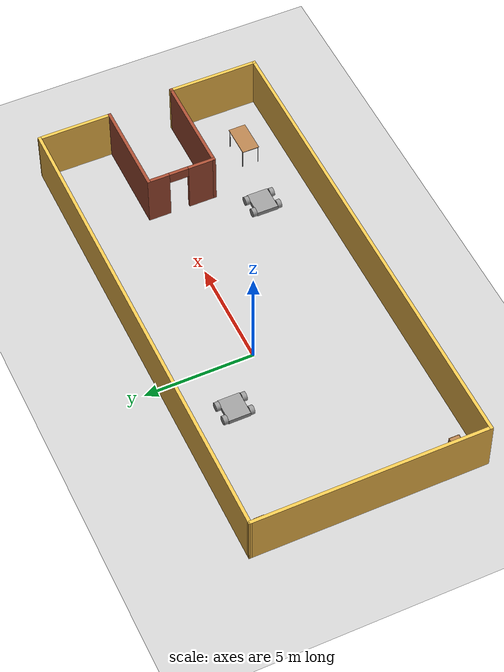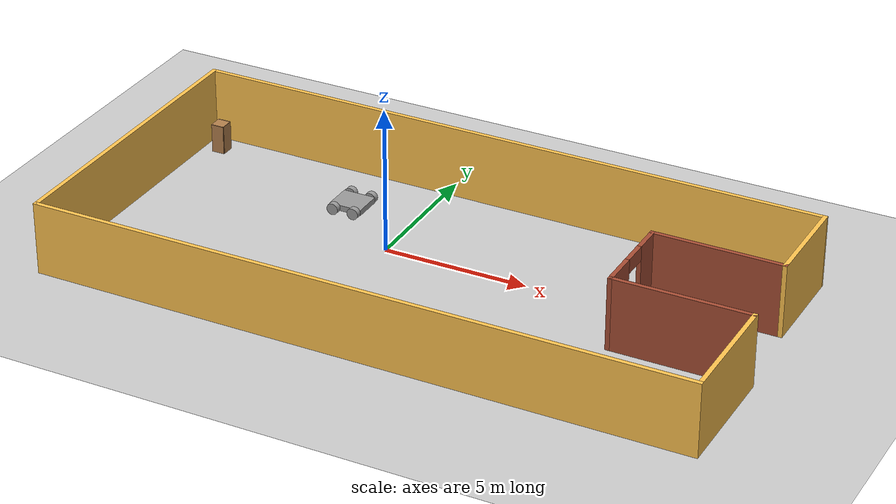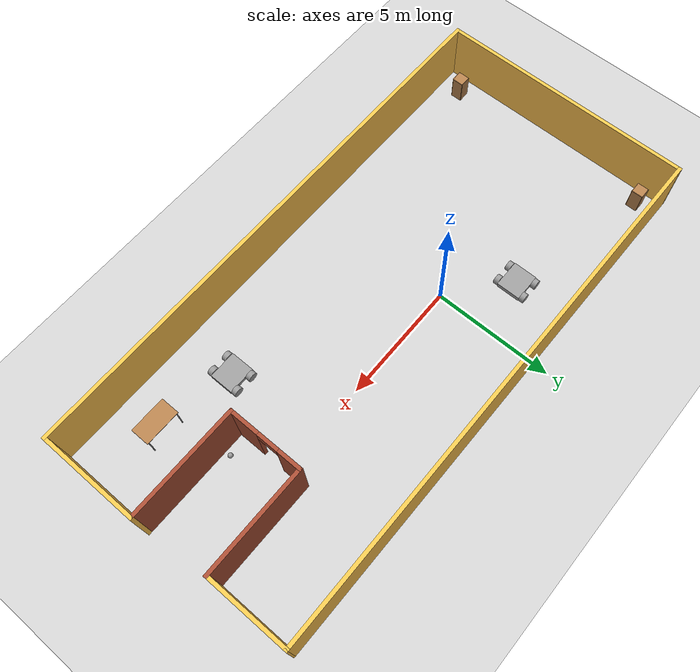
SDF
<sdf version="1.6">
 <world name="default">
  <plugin name="hello" filename="libhello.so"/>
  <light name="sun" type="directional">
   <pose>0 0 10 0 -0 0</pose>
   <diffuse>0.8 0.8 0.8 1</diffuse>
   <specular>0.2 0.2 0.2 1</specular>
   <attenuation>
    <range>1000</range>
    <constant>0.9</constant>
    <linear>0.01</linear>
    <quadratic>0.001</quadratic>
   </attenuation>
   <direction>-0.5 0.1 -0.9</direction>
  </light>
  <model name="ground_plane">
   <static>1</static>
   <link name="link">
    <collision name="collision">
     <geometry><plane><normal>0 0 1</normal><size>100 100</size></plane></geometry>
     <surface>
      <contact><collide_bitmask>65535</collide_bitmask></contact>
      <friction><ode><mu>100</mu><mu2>50</mu2></ode></friction>
     </surface>
    </collision>
    <visual name="visual">
     <cast_shadows>0</cast_shadows>
     <geometry><plane><normal>0 0 1</normal><size>100 100</size></plane></geometry>
     <material>
      <script><uri>file://media/materials/scripts/gazebo.material</uri><name>Gazebo/Grey</name></script>
     </material>
    </visual>
   </link>
  </model>
  <gravity>0 0 -9.8</gravity>
  <magnetic_field>6e-06 2.3e-05 -4.2e-05</magnetic_field>
  <atmosphere type="adiabatic"/>
  <physics name="default_physics" default="0" type="ode">
   <max_step_size>0.001</max_step_size>
   <real_time_factor>1</real_time_factor>
   <real_time_update_rate>1000</real_time_update_rate>
  </physics>
  <scene><ambient>0.4 0.4 0.4 1</ambient><background>0.7 0.7 0.7 1</background><shadows>1</shadows></scene>
  <spherical_coordinates>
   <surface_model>EARTH_WGS84</surface_model>
   <latitude_deg>0</latitude_deg>
   <longitude_deg>0</longitude_deg>
   <elevation>0</elevation>
   <heading_deg>0</heading_deg>
  </spherical_coordinates>
  <model name="mybuilding">
   <pose>2.21796 -0.97402 0 0 -0 0</pose>
   <link name="Wall_10">
    <collision name="Wall_10_Collision">
     <geometry><box><size>22.5 0.15 2.5</size></box></geometry>
     <pose>0 0 1.25 0 -0 0</pose>
    </collision>
    <visual name="Wall_10_Visual">
     <pose>0 0 1.25 0 -0 0</pose>
     <geometry><box><size>22.5 0.15 2.5</size></box></geometry>
     <material>
      <script><uri>file://media/materials/scripts/gazebo.material</uri><name>Gazebo/Grey</name></script>
      <ambient>1 0.764706 0.305882 1</ambient>
     </material>
     <meta><layer>0</layer></meta>
    </visual>
    <pose>8.7e-05 -5.30009 0 0 -0 0</pose>
   </link>
   <link name="Wall_11">
    <collision name="Wall_11_Collision">
     <geometry><box><size>4.25 0.15 2.5</size></box></geometry>
     <pose>0 0 1.25 0 -0 0</pose>
    </collision>
    <visual name="Wall_11_Visual">
     <pose>0 0 1.25 0 -0 0</pose>
     <geometry><box><size>4.25 0.15 2.5</size></box></geometry>
     <material>
      <script><uri>file://media/materials/scripts/gazebo.material</uri><name>Gazebo/Grey</name></script>
      <ambient>1 0.764706 0.305882 1</ambient>
     </material>
     <meta><layer>0</layer></meta>
    </visual>
    <pose>11.1751 -3.25008 0 0 -0 1.5708</pose>
   </link>
   <link name="Wall_12">
    <collision name="Wall_12_Collision">
     <geometry><box><size>4.75 0.15 2.5</size></box></geometry>
     <pose>0 0 1.25 0 -0 0</pose>
    </collision>
    <visual name="Wall_12_Visual">
     <pose>0 0 1.25 0 -0 0</pose>
     <geometry><box><size>4.75 0.15 2.5</size></box></geometry>
     <material>
      <script><uri>file://media/materials/scripts/gazebo.material</uri><name>Gazebo/Bricks</name></script>
      <ambient>1 0.764706 0.305882 1</ambient>
     </material>
     <meta><layer>0</layer></meta>
    </visual>
    <pose>8.87509 -1.20008 0 0 -0 3.14159</pose>
   </link>
   <link name="Wall_13">
    <pose>6.57509 0.349915 0 0 -0 1.5708</pose>
    <visual name="Wall_13_Visual_0">
     <pose>-0.975023 0 1.25 0 -0 0</pose>
     <geometry><box><size>1.29995 0.15 2.5</size></box></geometry>
     <material>
      <script><uri>file://media/materials/scripts/gazebo.material</uri><name>Gazebo/Bricks</name></script>
      <ambient>1 0.764706 0.305882 1</ambient>
     </material>
     <meta><layer>0</layer></meta>
    </visual>
    <collision name="Wall_13_Collision_0">
     <geometry><box><size>1.29995 0.15 2.5</size></box></geometry>
     <pose>-0.975023 0 1.25 0 -0 0</pose>
    </collision>
    <visual name="Wall_13_Visual_1">
     <pose>1.09998 0 1.25 0 -0 0</pose>
     <geometry><box><size>1.05004 0.15 2.5</size></box></geometry>
     <material>
      <script><uri>file://media/materials/scripts/gazebo.material</uri><name>Gazebo/Bricks</name></script>
      <ambient>1 0.764706 0.305882 1</ambient>
     </material>
     <meta><layer>0</layer></meta>
    </visual>
    <collision name="Wall_13_Collision_1">
     <geometry><box><size>1.05004 0.15 2.5</size></box></geometry>
     <pose>1.09998 0 1.25 0 -0 0</pose>
    </collision>
    <visual name="Wall_13_Visual_2">
     <pose>0.124955 0 2.25 0 -0 0</pose>
     <geometry><box><size>0.9 0.15 0.5</size></box></geometry>
     <material>
      <script><uri>file://media/materials/scripts/gazebo.material</uri><name>Gazebo/Bricks</name></script>
      <ambient>1 0.764706 0.305882 1</ambient>
     </material>
     <meta><layer>0</layer></meta>
    </visual>
    <collision name="Wall_13_Collision_2">
     <geometry><box><size>0.9 0.15 0.5</size></box></geometry>
     <pose>0.124955 0 2.25 0 -0 0</pose>
    </collision>
   </link>
   <link name="Wall_14">
    <collision name="Wall_14_Collision">
     <geometry><box><size>4.5 0.15 2.5</size></box></geometry>
     <pose>0 0 1.25 0 -0 0</pose>
    </collision>
    <visual name="Wall_14_Visual">
     <pose>0 0 1.25 0 -0 0</pose>
     <geometry><box><size>4.5 0.15 2.5</size></box></geometry>
     <material>
      <script><uri>file://media/materials/scripts/gazebo.material</uri><name>Gazebo/Bricks</name></script>
      <ambient>1 0.764706 0.305882 1</ambient>
     </material>
     <meta><layer>0</layer></meta>
    </visual>
    <pose>8.75009 1.89992 0 0 -0 0</pose>
   </link>
   <link name="Wall_15">
    <collision name="Wall_15_Collision">
     <geometry><box><size>3.5 0.15 2.5</size></box></geometry>
     <pose>0 0 1.25 0 -0 0</pose>
    </collision>
    <visual name="Wall_15_Visual">
     <pose>0 0 1.25 0 -0 0</pose>
     <geometry><box><size>3.5 0.15 2.5</size></box></geometry>
     <material>
      <script><uri>file://media/materials/scripts/gazebo.material</uri><name>Gazebo/Grey</name></script>
      <ambient>1 0.764706 0.305882 1</ambient>
     </material>
     <meta><layer>0</layer></meta>
    </visual>
    <pose>10.9251 3.57491 0 0 -0 1.5708</pose>
   </link>
   <link name="Wall_16">
    <collision name="Wall_16_Collision">
     <geometry><box><size>22.2501 0.15 2.5</size></box></geometry>
     <pose>0 0 1.25 0 -0 0</pose>
    </collision>
    <visual name="Wall_16_Visual">
     <pose>0 0 1.25 0 -0 0</pose>
     <geometry><box><size>22.2501 0.15 2.5</size></box></geometry>
     <material>
      <script><uri>file://media/materials/scripts/gazebo.material</uri><name>Gazebo/Grey</name></script>
      <ambient>1 0.764706 0.305882 1</ambient>
     </material>
     <meta><layer>0</layer></meta>
    </visual>
    <pose>-0.124913 5.27492 0 0 -0 3.13933</pose>
   </link>
   <link name="Wall_9">
    <collision name="Wall_9_Collision">
     <geometry><box><size>10.75 0.15 2.5</size></box></geometry>
     <pose>0 0 1.25 0 -0 0</pose>
    </collision>
    <visual name="Wall_9_Visual">
     <pose>0 0 1.25 0 -0 0</pose>
     <geometry><box><size>10.75 0.15 2.5</size></box></geometry>
     <material>
      <script><uri>file://media/materials/scripts/gazebo.material</uri><name>Gazebo/Grey</name></script>
      <ambient>1 0.764706 0.305882 1</ambient>
     </material>
     <meta><layer>0</layer></meta>
    </visual>
    <pose>-11.1749 -8.5e-05 0 0 0 -1.5708</pose>
   </link>
   <static>1</static>
  </model>
  <model name="mymodel">
   <link name="link_0">
    <inertial>
     <mass>1</mass>
     <inertia>
      <ixx>0.166667</ixx>
      <ixy>0</ixy>
      <ixz>0</ixz>
      <iyy>0.166667</iyy>
      <iyz>0</iyz>
      <izz>0.166667</izz>
     </inertia>
    </inertial>
    <visual name="visual">
     <geometry><box><size>1.15 1 0.2</size></box></geometry>
     <material>
      <lighting>1</lighting>
      <script><uri>file://media/materials/scripts/gazebo.material</uri><name>Gazebo/Grey</name></script>
      <shader type="pixel"><normal_map>__default__</normal_map></shader>
      <ambient>0.3 0.3 0.3 1</ambient>
      <diffuse>0.7 0.7 0.7 1</diffuse>
      <specular>0.01 0.01 0.01 1</specular>
      <emissive>0 0 0 1</emissive>
     </material>
    </visual>
    <collision name="collision">
     <geometry><box><size>1.15 1 0.2</size></box></geometry>
     <surface>
      <friction>
       <ode><mu>1</mu><mu2>1</mu2><fdir1>0 0 0</fdir1><slip1>0</slip1><slip2>0</slip2></ode>
       <torsional>
        <coefficient>1</coefficient>
        <patch_radius>0</patch_radius>
        <surface_radius>0</surface_radius>
        <use_patch_radius>1</use_patch_radius>
        <ode><slip>0</slip></ode>
       </torsional>
      </friction>
      <bounce><restitution_coefficient>0</restitution_coefficient><threshold>1e+06</threshold></bounce>
      <contact>
       <collide_without_contact>0</collide_without_contact>
       <collide_without_contact_bitmask>1</collide_without_contact_bitmask>
       <collide_bitmask>1</collide_bitmask>
       <ode>
        <soft_cfm>0</soft_cfm>
        <soft_erp>0.2</soft_erp>
        <kp>1e+13</kp>
        <kd>1</kd>
        <max_vel>0.01</max_vel>
        <min_depth>0</min_depth>
       </ode>
       <bullet>
        <split_impulse>1</split_impulse>
        <split_impulse_penetration_threshold>-0.01</split_impulse_penetration_threshold>
        <soft_cfm>0</soft_cfm>
        <soft_erp>0.2</soft_erp>
        <kp>1e+13</kp>
        <kd>1</kd>
       </bullet>
      </contact>
     </surface>
    </collision>
   </link>
   <link name="link_1">
    <pose>-0.375 -0.600019 0 1.5707 -0 0</pose>
    <inertial>
     <mass>1</mass>
     <inertia><ixx>0.145833</ixx><ixy>0</ixy><ixz>0</ixz><iyy>0.145833</iyy><iyz>0</iyz><izz>0.125</izz></inertia>
    </inertial>
    <visual name="visual">
     <geometry><cylinder><radius>0.2</radius><length>0.2</length></cylinder></geometry>
     <material>
      <lighting>1</lighting>
      <script><uri>file://media/materials/scripts/gazebo.material</uri><name>Gazebo/Grey</name></script>
      <shader type="pixel"><normal_map>__default__</normal_map></shader>
      <ambient>0.3 0.3 0.3 1</ambient>
      <diffuse>0.7 0.7 0.7 1</diffuse>
      <specular>0.01 0.01 0.01 1</specular>
      <emissive>0 0 0 1</emissive>
     </material>
    </visual>
    <collision name="collision">
     <geometry><cylinder><radius>0.2</radius><length>0.2</length></cylinder></geometry>
     <surface>
      <friction>
       <ode><mu>1</mu><mu2>1</mu2><fdir1>0 0 0</fdir1><slip1>0</slip1><slip2>0</slip2></ode>
       <torsional>
        <coefficient>1</coefficient>
        <patch_radius>0</patch_radius>
        <surface_radius>0</surface_radius>
        <use_patch_radius>1</use_patch_radius>
        <ode><slip>0</slip></ode>
       </torsional>
      </friction>
      <bounce><restitution_coefficient>0</restitution_coefficient><threshold>1e+06</threshold></bounce>
      <contact>
       <collide_without_contact>0</collide_without_contact>
       <collide_without_contact_bitmask>1</collide_without_contact_bitmask>
       <collide_bitmask>1</collide_bitmask>
       <ode>
        <soft_cfm>0</soft_cfm>
        <soft_erp>0.2</soft_erp>
        <kp>1e+13</kp>
        <kd>1</kd>
        <max_vel>0.01</max_vel>
        <min_depth>0</min_depth>
       </ode>
       <bullet>
        <split_impulse>1</split_impulse>
        <split_impulse_penetration_threshold>-0.01</split_impulse_penetration_threshold>
        <soft_cfm>0</soft_cfm>
        <soft_erp>0.2</soft_erp>
        <kp>1e+13</kp>
        <kd>1</kd>
       </bullet>
      </contact>
     </surface>
    </collision>
   </link>
   <link name="link_1_clone">
    <pose>-0.375 0.600019 0 1.5707 -0 0</pose>
    <inertial>
     <mass>1</mass>
     <inertia><ixx>0.145833</ixx><ixy>0</ixy><ixz>0</ixz><iyy>0.145833</iyy><iyz>0</iyz><izz>0.125</izz></inertia>
    </inertial>
    <visual name="visual">
     <geometry><cylinder><radius>0.2</radius><length>0.2</length></cylinder></geometry>
     <material>
      <lighting>1</lighting>
      <script><uri>file://media/materials/scripts/gazebo.material</uri><name>Gazebo/Grey</name></script>
      <shader type="pixel"><normal_map>__default__</normal_map></shader>
      <ambient>0.3 0.3 0.3 1</ambient>
      <diffuse>0.7 0.7 0.7 1</diffuse>
      <specular>0.01 0.01 0.01 1</specular>
      <emissive>0 0 0 1</emissive>
     </material>
    </visual>
    <collision name="collision">
     <geometry><cylinder><radius>0.2</radius><length>0.2</length></cylinder></geometry>
     <surface>
      <friction>
       <ode><mu>1</mu><mu2>1</mu2><fdir1>0 0 0</fdir1><slip1>0</slip1><slip2>0</slip2></ode>
       <torsional>
        <coefficient>1</coefficient>
        <patch_radius>0</patch_radius>
        <surface_radius>0</surface_radius>
        <use_patch_radius>1</use_patch_radius>
        <ode><slip>0</slip></ode>
       </torsional>
      </friction>
      <bounce><restitution_coefficient>0</restitution_coefficient><threshold>1e+06</threshold></bounce>
      <contact>
       <collide_without_contact>0</collide_without_contact>
       <collide_without_contact_bitmask>1</collide_without_contact_bitmask>
       <collide_bitmask>1</collide_bitmask>
       <ode>
        <soft_cfm>0</soft_cfm>
        <soft_erp>0.2</soft_erp>
        <kp>1e+13</kp>
        <kd>1</kd>
        <max_vel>0.01</max_vel>
        <min_depth>0</min_depth>
       </ode>
       <bullet>
        <split_impulse>1</split_impulse>
        <split_impulse_penetration_threshold>-0.01</split_impulse_penetration_threshold>
        <soft_cfm>0</soft_cfm>
        <soft_erp>0.2</soft_erp>
        <kp>1e+13</kp>
        <kd>1</kd>
       </bullet>
      </contact>
     </surface>
    </collision>
   </link>
   <link name="link_1_clone_0">
    <pose>0.375 -0.600019 0 1.5707 -0 0</pose>
    <inertial>
     <mass>1</mass>
     <inertia><ixx>0.145833</ixx><ixy>0</ixy><ixz>0</ixz><iyy>0.145833</iyy><iyz>0</iyz><izz>0.125</izz></inertia>
    </inertial>
    <visual name="visual">
     <geometry><cylinder><radius>0.2</radius><length>0.2</length></cylinder></geometry>
     <material>
      <lighting>1</lighting>
      <script><uri>file://media/materials/scripts/gazebo.material</uri><name>Gazebo/Grey</name></script>
      <shader type="pixel"><normal_map>__default__</normal_map></shader>
      <ambient>0.3 0.3 0.3 1</ambient>
      <diffuse>0.7 0.7 0.7 1</diffuse>
      <specular>0.01 0.01 0.01 1</specular>
      <emissive>0 0 0 1</emissive>
     </material>
    </visual>
    <collision name="collision">
     <geometry><cylinder><radius>0.2</radius><length>0.2</length></cylinder></geometry>
     <surface>
      <friction>
       <ode><mu>1</mu><mu2>1</mu2><fdir1>0 0 0</fdir1><slip1>0</slip1><slip2>0</slip2></ode>
       <torsional>
        <coefficient>1</coefficient>
        <patch_radius>0</patch_radius>
        <surface_radius>0</surface_radius>
        <use_patch_radius>1</use_patch_radius>
        <ode><slip>0</slip></ode>
       </torsional>
      </friction>
      <bounce><restitution_coefficient>0</restitution_coefficient><threshold>1e+06</threshold></bounce>
      <contact>
       <collide_without_contact>0</collide_without_contact>
       <collide_without_contact_bitmask>1</collide_without_contact_bitmask>
       <collide_bitmask>1</collide_bitmask>
       <ode>
        <soft_cfm>0</soft_cfm>
        <soft_erp>0.2</soft_erp>
        <kp>1e+13</kp>
        <kd>1</kd>
        <max_vel>0.01</max_vel>
        <min_depth>0</min_depth>
       </ode>
       <bullet>
        <split_impulse>1</split_impulse>
        <split_impulse_penetration_threshold>-0.01</split_impulse_penetration_threshold>
        <soft_cfm>0</soft_cfm>
        <soft_erp>0.2</soft_erp>
        <kp>1e+13</kp>
        <kd>1</kd>
       </bullet>
      </contact>
     </surface>
    </collision>
   </link>
   <link name="link_1_clone_0_clone">
    <pose>0.375 0.600019 0 1.5707 -0 0</pose>
    <inertial>
     <mass>1</mass>
     <inertia><ixx>0.145833</ixx><ixy>0</ixy><ixz>0</ixz><iyy>0.145833</iyy><iyz>0</iyz><izz>0.125</izz></inertia>
    </inertial>
    <visual name="visual">
     <geometry><cylinder><radius>0.2</radius><length>0.2</length></cylinder></geometry>
     <material>
      <lighting>1</lighting>
      <script><uri>file://media/materials/scripts/gazebo.material</uri><name>Gazebo/Grey</name></script>
      <shader type="pixel"><normal_map>__default__</normal_map></shader>
      <ambient>0.3 0.3 0.3 1</ambient>
      <diffuse>0.7 0.7 0.7 1</diffuse>
      <specular>0.01 0.01 0.01 1</specular>
      <emissive>0 0 0 1</emissive>
     </material>
    </visual>
    <collision name="collision">
     <geometry><cylinder><radius>0.2</radius><length>0.2</length></cylinder></geometry>
     <surface>
      <friction>
       <ode><mu>1</mu><mu2>1</mu2><fdir1>0 0 0</fdir1><slip1>0</slip1><slip2>0</slip2></ode>
       <torsional>
        <coefficient>1</coefficient>
        <patch_radius>0</patch_radius>
        <surface_radius>0</surface_radius>
        <use_patch_radius>1</use_patch_radius>
        <ode><slip>0</slip></ode>
       </torsional>
      </friction>
      <bounce><restitution_coefficient>0</restitution_coefficient><threshold>1e+06</threshold></bounce>
      <contact>
       <collide_without_contact>0</collide_without_contact>
       <collide_without_contact_bitmask>1</collide_without_contact_bitmask>
       <collide_bitmask>1</collide_bitmask>
       <ode>
        <soft_cfm>0</soft_cfm>
        <soft_erp>0.2</soft_erp>
        <kp>1e+13</kp>
        <kd>1</kd>
        <max_vel>0.01</max_vel>
        <min_depth>0</min_depth>
       </ode>
       <bullet>
        <split_impulse>1</split_impulse>
        <split_impulse_penetration_threshold>-0.01</split_impulse_penetration_threshold>
        <soft_cfm>0</soft_cfm>
        <soft_erp>0.2</soft_erp>
        <kp>1e+13</kp>
        <kd>1</kd>
       </bullet>
      </contact>
     </surface>
    </collision>
   </link>
   <joint name="link_0_JOINT_0" type="revolute">
    <parent>link_0</parent>
    <child>link_1</child>
    <axis>
     <xyz>0 0 1</xyz>
     <use_parent_model_frame>0</use_parent_model_frame>
     <limit>
      <lower>-1.79769e+308</lower>
      <upper>1.79769e+308</upper>
      <effort>-1</effort>
      <velocity>-1</velocity>
     </limit>
     <dynamics>
      <spring_reference>0</spring_reference>
      <spring_stiffness>0</spring_stiffness>
      <damping>0</damping>
     </dynamics>
    </axis>
    <physics>
     <ode><limit><cfm>0</cfm><erp>0.2</erp></limit><suspension><cfm>0</cfm><erp>0.2</erp></suspension></ode>
    </physics>
   </joint>
   <joint name="link_0_JOINT_1" type="revolute">
    <parent>link_0</parent>
    <child>link_1_clone_0</child>
    <axis>
     <xyz>0 0 1</xyz>
     <use_parent_model_frame>0</use_parent_model_frame>
     <limit>
      <lower>-1.79769e+308</lower>
      <upper>1.79769e+308</upper>
      <effort>-1</effort>
      <velocity>-1</velocity>
     </limit>
     <dynamics>
      <spring_reference>0</spring_reference>
      <spring_stiffness>0</spring_stiffness>
      <damping>0</damping>
     </dynamics>
    </axis>
    <physics>
     <ode><limit><cfm>0</cfm><erp>0.2</erp></limit><suspension><cfm>0</cfm><erp>0.2</erp></suspension></ode>
    </physics>
   </joint>
   <joint name="link_0_JOINT_3" type="revolute">
    <parent>link_0</parent>
    <child>link_1_clone_0_clone</child>
    <axis>
     <xyz>0 0 1</xyz>
     <use_parent_model_frame>0</use_parent_model_frame>
     <limit>
      <lower>-1.79769e+308</lower>
      <upper>1.79769e+308</upper>
      <effort>-1</effort>
      <velocity>-1</velocity>
     </limit>
     <dynamics>
      <spring_reference>0</spring_reference>
      <spring_stiffness>0</spring_stiffness>
      <damping>0</damping>
     </dynamics>
    </axis>
    <physics>
     <ode><limit><cfm>0</cfm><erp>0.2</erp></limit><suspension><cfm>0</cfm><erp>0.2</erp></suspension></ode>
    </physics>
   </joint>
   <joint name="link_0_JOINT_4" type="revolute">
    <parent>link_0</parent>
    <child>link_1_clone</child>
    <axis>
     <xyz>0 0 1</xyz>
     <use_parent_model_frame>0</use_parent_model_frame>
     <limit>
      <lower>-1.79769e+308</lower>
      <upper>1.79769e+308</upper>
      <effort>-1</effort>
      <velocity>-1</velocity>
     </limit>
     <dynamics>
      <spring_reference>0</spring_reference>
      <spring_stiffness>0</spring_stiffness>
      <damping>0</damping>
     </dynamics>
    </axis>
    <physics>
     <ode><limit><cfm>0</cfm><erp>0.2</erp></limit><suspension><cfm>0</cfm><erp>0.2</erp></suspension></ode>
    </physics>
   </joint>
   <static>0</static>
   <pose>-2.27967 1.93599 0.20001 1e-06 -2e-06 0.000346</pose>
  </model>
  <model name="mymodel_0">
   <link name="link_0">
    <inertial>
     <mass>1</mass>
     <inertia>
      <ixx>0.166667</ixx>
      <ixy>0</ixy>
      <ixz>0</ixz>
      <iyy>0.166667</iyy>
      <iyz>0</iyz>
      <izz>0.166667</izz>
     </inertia>
    </inertial>
    <visual name="visual">
     <geometry><box><size>1.15 1 0.2</size></box></geometry>
     <material>
      <lighting>1</lighting>
      <script><uri>file://media/materials/scripts/gazebo.material</uri><name>Gazebo/Grey</name></script>
      <shader type="pixel"><normal_map>__default__</normal_map></shader>
      <ambient>0.3 0.3 0.3 1</ambient>
      <diffuse>0.7 0.7 0.7 1</diffuse>
      <specular>0.01 0.01 0.01 1</specular>
      <emissive>0 0 0 1</emissive>
     </material>
    </visual>
    <collision name="collision">
     <geometry><box><size>1.15 1 0.2</size></box></geometry>
     <surface>
      <friction>
       <ode><mu>1</mu><mu2>1</mu2><fdir1>0 0 0</fdir1><slip1>0</slip1><slip2>0</slip2></ode>
       <torsional>
        <coefficient>1</coefficient>
        <patch_radius>0</patch_radius>
        <surface_radius>0</surface_radius>
        <use_patch_radius>1</use_patch_radius>
        <ode><slip>0</slip></ode>
       </torsional>
      </friction>
      <bounce><restitution_coefficient>0</restitution_coefficient><threshold>1e+06</threshold></bounce>
      <contact>
       <collide_without_contact>0</collide_without_contact>
       <collide_without_contact_bitmask>1</collide_without_contact_bitmask>
       <collide_bitmask>1</collide_bitmask>
       <ode>
        <soft_cfm>0</soft_cfm>
        <soft_erp>0.2</soft_erp>
        <kp>1e+13</kp>
        <kd>1</kd>
        <max_vel>0.01</max_vel>
        <min_depth>0</min_depth>
       </ode>
       <bullet>
        <split_impulse>1</split_impulse>
        <split_impulse_penetration_threshold>-0.01</split_impulse_penetration_threshold>
        <soft_cfm>0</soft_cfm>
        <soft_erp>0.2</soft_erp>
        <kp>1e+13</kp>
        <kd>1</kd>
       </bullet>
      </contact>
     </surface>
    </collision>
   </link>
   <link name="link_1">
    <pose>-0.375 -0.600019 0 1.5707 -0 0</pose>
    <inertial>
     <mass>1</mass>
     <inertia><ixx>0.145833</ixx><ixy>0</ixy><ixz>0</ixz><iyy>0.145833</iyy><iyz>0</iyz><izz>0.125</izz></inertia>
    </inertial>
    <visual name="visual">
     <geometry><cylinder><radius>0.2</radius><length>0.2</length></cylinder></geometry>
     <material>
      <lighting>1</lighting>
      <script><uri>file://media/materials/scripts/gazebo.material</uri><name>Gazebo/Grey</name></script>
      <shader type="pixel"><normal_map>__default__</normal_map></shader>
      <ambient>0.3 0.3 0.3 1</ambient>
      <diffuse>0.7 0.7 0.7 1</diffuse>
      <specular>0.01 0.01 0.01 1</specular>
      <emissive>0 0 0 1</emissive>
     </material>
    </visual>
    <collision name="collision">
     <geometry><cylinder><radius>0.2</radius><length>0.2</length></cylinder></geometry>
     <surface>
      <friction>
       <ode><mu>1</mu><mu2>1</mu2><fdir1>0 0 0</fdir1><slip1>0</slip1><slip2>0</slip2></ode>
       <torsional>
        <coefficient>1</coefficient>
        <patch_radius>0</patch_radius>
        <surface_radius>0</surface_radius>
        <use_patch_radius>1</use_patch_radius>
        <ode><slip>0</slip></ode>
       </torsional>
      </friction>
      <bounce><restitution_coefficient>0</restitution_coefficient><threshold>1e+06</threshold></bounce>
      <contact>
       <collide_without_contact>0</collide_without_contact>
       <collide_without_contact_bitmask>1</collide_without_contact_bitmask>
       <collide_bitmask>1</collide_bitmask>
       <ode>
        <soft_cfm>0</soft_cfm>
        <soft_erp>0.2</soft_erp>
        <kp>1e+13</kp>
        <kd>1</kd>
        <max_vel>0.01</max_vel>
        <min_depth>0</min_depth>
       </ode>
       <bullet>
        <split_impulse>1</split_impulse>
        <split_impulse_penetration_threshold>-0.01</split_impulse_penetration_threshold>
        <soft_cfm>0</soft_cfm>
        <soft_erp>0.2</soft_erp>
        <kp>1e+13</kp>
        <kd>1</kd>
       </bullet>
      </contact>
     </surface>
    </collision>
   </link>
   <link name="link_1_clone">
    <pose>-0.375 0.600019 0 1.5707 -0 0</pose>
    <inertial>
     <mass>1</mass>
     <inertia><ixx>0.145833</ixx><ixy>0</ixy><ixz>0</ixz><iyy>0.145833</iyy><iyz>0</iyz><izz>0.125</izz></inertia>
    </inertial>
    <visual name="visual">
     <geometry><cylinder><radius>0.2</radius><length>0.2</length></cylinder></geometry>
     <material>
      <lighting>1</lighting>
      <script><uri>file://media/materials/scripts/gazebo.material</uri><name>Gazebo/Grey</name></script>
      <shader type="pixel"><normal_map>__default__</normal_map></shader>
      <ambient>0.3 0.3 0.3 1</ambient>
      <diffuse>0.7 0.7 0.7 1</diffuse>
      <specular>0.01 0.01 0.01 1</specular>
      <emissive>0 0 0 1</emissive>
     </material>
    </visual>
    <collision name="collision">
     <geometry><cylinder><radius>0.2</radius><length>0.2</length></cylinder></geometry>
     <surface>
      <friction>
       <ode><mu>1</mu><mu2>1</mu2><fdir1>0 0 0</fdir1><slip1>0</slip1><slip2>0</slip2></ode>
       <torsional>
        <coefficient>1</coefficient>
        <patch_radius>0</patch_radius>
        <surface_radius>0</surface_radius>
        <use_patch_radius>1</use_patch_radius>
        <ode><slip>0</slip></ode>
       </torsional>
      </friction>
      <bounce><restitution_coefficient>0</restitution_coefficient><threshold>1e+06</threshold></bounce>
      <contact>
       <collide_without_contact>0</collide_without_contact>
       <collide_without_contact_bitmask>1</collide_without_contact_bitmask>
       <collide_bitmask>1</collide_bitmask>
       <ode>
        <soft_cfm>0</soft_cfm>
        <soft_erp>0.2</soft_erp>
        <kp>1e+13</kp>
        <kd>1</kd>
        <max_vel>0.01</max_vel>
        <min_depth>0</min_depth>
       </ode>
       <bullet>
        <split_impulse>1</split_impulse>
        <split_impulse_penetration_threshold>-0.01</split_impulse_penetration_threshold>
        <soft_cfm>0</soft_cfm>
        <soft_erp>0.2</soft_erp>
        <kp>1e+13</kp>
        <kd>1</kd>
       </bullet>
      </contact>
     </surface>
    </collision>
   </link>
   <link name="link_1_clone_0">
    <pose>0.375 -0.600019 0 1.5707 -0 0</pose>
    <inertial>
     <mass>1</mass>
     <inertia><ixx>0.145833</ixx><ixy>0</ixy><ixz>0</ixz><iyy>0.145833</iyy><iyz>0</iyz><izz>0.125</izz></inertia>
    </inertial>
    <visual name="visual">
     <geometry><cylinder><radius>0.2</radius><length>0.2</length></cylinder></geometry>
     <material>
      <lighting>1</lighting>
      <script><uri>file://media/materials/scripts/gazebo.material</uri><name>Gazebo/Grey</name></script>
      <shader type="pixel"><normal_map>__default__</normal_map></shader>
      <ambient>0.3 0.3 0.3 1</ambient>
      <diffuse>0.7 0.7 0.7 1</diffuse>
      <specular>0.01 0.01 0.01 1</specular>
      <emissive>0 0 0 1</emissive>
     </material>
    </visual>
    <collision name="collision">
     <geometry><cylinder><radius>0.2</radius><length>0.2</length></cylinder></geometry>
     <surface>
      <friction>
       <ode><mu>1</mu><mu2>1</mu2><fdir1>0 0 0</fdir1><slip1>0</slip1><slip2>0</slip2></ode>
       <torsional>
        <coefficient>1</coefficient>
        <patch_radius>0</patch_radius>
        <surface_radius>0</surface_radius>
        <use_patch_radius>1</use_patch_radius>
        <ode><slip>0</slip></ode>
       </torsional>
      </friction>
      <bounce><restitution_coefficient>0</restitution_coefficient><threshold>1e+06</threshold></bounce>
      <contact>
       <collide_without_contact>0</collide_without_contact>
       <collide_without_contact_bitmask>1</collide_without_contact_bitmask>
       <collide_bitmask>1</collide_bitmask>
       <ode>
        <soft_cfm>0</soft_cfm>
        <soft_erp>0.2</soft_erp>
        <kp>1e+13</kp>
        <kd>1</kd>
        <max_vel>0.01</max_vel>
        <min_depth>0</min_depth>
       </ode>
       <bullet>
        <split_impulse>1</split_impulse>
        <split_impulse_penetration_threshold>-0.01</split_impulse_penetration_threshold>
        <soft_cfm>0</soft_cfm>
        <soft_erp>0.2</soft_erp>
        <kp>1e+13</kp>
        <kd>1</kd>
       </bullet>
      </contact>
     </surface>
    </collision>
   </link>
   <link name="link_1_clone_0_clone">
    <pose>0.375 0.600019 0 1.5707 -0 0</pose>
    <inertial>
     <mass>1</mass>
     <inertia><ixx>0.145833</ixx><ixy>0</ixy><ixz>0</ixz><iyy>0.145833</iyy><iyz>0</iyz><izz>0.125</izz></inertia>
    </inertial>
    <visual name="visual">
     <geometry><cylinder><radius>0.2</radius><length>0.2</length></cylinder></geometry>
     <material>
      <lighting>1</lighting>
      <script><uri>file://media/materials/scripts/gazebo.material</uri><name>Gazebo/Grey</name></script>
      <shader type="pixel"><normal_map>__default__</normal_map></shader>
      <ambient>0.3 0.3 0.3 1</ambient>
      <diffuse>0.7 0.7 0.7 1</diffuse>
      <specular>0.01 0.01 0.01 1</specular>
      <emissive>0 0 0 1</emissive>
     </material>
    </visual>
    <collision name="collision">
     <geometry><cylinder><radius>0.2</radius><length>0.2</length></cylinder></geometry>
     <surface>
      <friction>
       <ode><mu>1</mu><mu2>1</mu2><fdir1>0 0 0</fdir1><slip1>0</slip1><slip2>0</slip2></ode>
       <torsional>
        <coefficient>1</coefficient>
        <patch_radius>0</patch_radius>
        <surface_radius>0</surface_radius>
        <use_patch_radius>1</use_patch_radius>
        <ode><slip>0</slip></ode>
       </torsional>
      </friction>
      <bounce><restitution_coefficient>0</restitution_coefficient><threshold>1e+06</threshold></bounce>
      <contact>
       <collide_without_contact>0</collide_without_contact>
       <collide_without_contact_bitmask>1</collide_without_contact_bitmask>
       <collide_bitmask>1</collide_bitmask>
       <ode>
        <soft_cfm>0</soft_cfm>
        <soft_erp>0.2</soft_erp>
        <kp>1e+13</kp>
        <kd>1</kd>
        <max_vel>0.01</max_vel>
        <min_depth>0</min_depth>
       </ode>
       <bullet>
        <split_impulse>1</split_impulse>
        <split_impulse_penetration_threshold>-0.01</split_impulse_penetration_threshold>
        <soft_cfm>0</soft_cfm>
        <soft_erp>0.2</soft_erp>
        <kp>1e+13</kp>
        <kd>1</kd>
       </bullet>
      </contact>
     </surface>
    </collision>
   </link>
   <joint name="link_0_JOINT_0" type="revolute">
    <parent>link_0</parent>
    <child>link_1</child>
    <axis>
     <xyz>0 0 1</xyz>
     <use_parent_model_frame>0</use_parent_model_frame>
     <limit>
      <lower>-1.79769e+308</lower>
      <upper>1.79769e+308</upper>
      <effort>-1</effort>
      <velocity>-1</velocity>
     </limit>
     <dynamics>
      <spring_reference>0</spring_reference>
      <spring_stiffness>0</spring_stiffness>
      <damping>0</damping>
     </dynamics>
    </axis>
    <physics>
     <ode><limit><cfm>0</cfm><erp>0.2</erp></limit><suspension><cfm>0</cfm><erp>0.2</erp></suspension></ode>
    </physics>
   </joint>
   <joint name="link_0_JOINT_1" type="revolute">
    <parent>link_0</parent>
    <child>link_1_clone_0</child>
    <axis>
     <xyz>0 0 1</xyz>
     <use_parent_model_frame>0</use_parent_model_frame>
     <limit>
      <lower>-1.79769e+308</lower>
      <upper>1.79769e+308</upper>
      <effort>-1</effort>
      <velocity>-1</velocity>
     </limit>
     <dynamics>
      <spring_reference>0</spring_reference>
      <spring_stiffness>0</spring_stiffness>
      <damping>0</damping>
     </dynamics>
    </axis>
    <physics>
     <ode><limit><cfm>0</cfm><erp>0.2</erp></limit><suspension><cfm>0</cfm><erp>0.2</erp></suspension></ode>
    </physics>
   </joint>
   <joint name="link_0_JOINT_3" type="revolute">
    <parent>link_0</parent>
    <child>link_1_clone_0_clone</child>
    <axis>
     <xyz>0 0 1</xyz>
     <use_parent_model_frame>0</use_parent_model_frame>
     <limit>
      <lower>-1.79769e+308</lower>
      <upper>1.79769e+308</upper>
      <effort>-1</effort>
      <velocity>-1</velocity>
     </limit>
     <dynamics>
      <spring_reference>0</spring_reference>
      <spring_stiffness>0</spring_stiffness>
      <damping>0</damping>
     </dynamics>
    </axis>
    <physics>
     <ode><limit><cfm>0</cfm><erp>0.2</erp></limit><suspension><cfm>0</cfm><erp>0.2</erp></suspension></ode>
    </physics>
   </joint>
   <joint name="link_0_JOINT_4" type="revolute">
    <parent>link_0</parent>
    <child>link_1_clone</child>
    <axis>
     <xyz>0 0 1</xyz>
     <use_parent_model_frame>0</use_parent_model_frame>
     <limit>
      <lower>-1.79769e+308</lower>
      <upper>1.79769e+308</upper>
      <effort>-1</effort>
      <velocity>-1</velocity>
     </limit>
     <dynamics>
      <spring_reference>0</spring_reference>
      <spring_stiffness>0</spring_stiffness>
      <damping>0</damping>
     </dynamics>
    </axis>
    <physics>
     <ode><limit><cfm>0</cfm><erp>0.2</erp></limit><suspension><cfm>0</cfm><erp>0.2</erp></suspension></ode>
    </physics>
   </joint>
   <static>0</static>
   <pose>7.41881 -3.90049 0.200009 0 -1e-06 -0.000335</pose>
  </model>
  <model name="cabinet">
   <static>1</static>
   <link name="cabinet_bottom_plate">
    <inertial>
     <pose>0 0 -1 0 -0 0</pose>
     <inertia><ixx>2.05</ixx><ixy>0</ixy><ixz>0</ixz><iyy>2.05</iyy><iyz>0</iyz><izz>2.05</izz></inertia>
     <mass>25</mass>
    </inertial>
    <collision name="cabinet_bottom_plate_geom">
     <pose>0 0 0.01 0 -0 0</pose>
     <geometry><box><size>0.45 0.45 0.02</size></box></geometry>
    </collision>
    <visual name="cabinet_bottom_plate_geom_visual">
     <pose>0 0 0.01 0 -0 0</pose>
     <geometry><box><size>0.45 0.45 0.02</size></box></geometry>
     <material>
      <script><uri>file://media/materials/scripts/gazebo.material</uri><name>Gazebo/Wood</name></script>
     </material>
    </visual>
    <collision name="cabinet_bottom_plate_geom_cabinet_back_plate">
     <pose>0.235 0 0.51 0 -0 0</pose>
     <geometry><box><size>0.02 0.45 1.02</size></box></geometry>
    </collision>
    <visual name="cabinet_bottom_plate_geom_cabinet_back_plate_visual">
     <pose>0.235 0 0.51 0 -0 0</pose>
     <geometry><box><size>0.02 0.45 1.02</size></box></geometry>
     <material>
      <script><uri>file://media/materials/scripts/gazebo.material</uri><name>Gazebo/Wood</name></script>
     </material>
    </visual>
    <collision name="cabinet_bottom_plate_geom_cabinet_left_plate">
     <pose>0 0.235 0.51 0 -0 0</pose>
     <geometry><box><size>0.45 0.02 1.02</size></box></geometry>
    </collision>
    <visual name="cabinet_bottom_plate_geom_cabinet_left_plate_visual">
     <pose>0 0.235 0.51 0 -0 0</pose>
     <geometry><box><size>0.45 0.02 1.02</size></box></geometry>
     <material>
      <script><uri>file://media/materials/scripts/gazebo.material</uri><name>Gazebo/Wood</name></script>
     </material>
    </visual>
    <collision name="cabinet_bottom_plate_geom_cabinet_middle_plate">
     <pose>0 0 0.51 0 -0 0</pose>
     <geometry><box><size>0.45 0.45 0.02</size></box></geometry>
    </collision>
    <visual name="cabinet_bottom_plate_geom_cabinet_middle_plate_visual">
     <pose>0 0 0.51 0 -0 0</pose>
     <geometry><box><size>0.45 0.45 0.02</size></box></geometry>
     <material>
      <script><uri>file://media/materials/scripts/gazebo.material</uri><name>Gazebo/Wood</name></script>
     </material>
    </visual>
    <collision name="cabinet_bottom_plate_geom_cabinet_right_plate">
     <pose>0 -0.235 0.51 0 -0 0</pose>
     <geometry><box><size>0.45 0.02 1.02</size></box></geometry>
    </collision>
    <visual name="cabinet_bottom_plate_geom_cabinet_right_plate_visual">
     <pose>0 -0.235 0.51 0 -0 0</pose>
     <geometry><box><size>0.45 0.02 1.02</size></box></geometry>
     <material>
      <script><uri>file://media/materials/scripts/gazebo.material</uri><name>Gazebo/Wood</name></script>
     </material>
    </visual>
    <collision name="cabinet_bottom_plate_geom_cabinet_top_plate">
     <pose>0 0 1.01 0 -0 0</pose>
     <geometry><box><size>0.45 0.45 0.02</size></box></geometry>
    </collision>
    <visual name="cabinet_bottom_plate_geom_cabinet_top_plate_visual">
     <pose>0 0 1.01 0 -0 0</pose>
     <geometry><box><size>0.45 0.45 0.02</size></box></geometry>
     <material>
      <script><uri>file://media/materials/scripts/gazebo.material</uri><name>Gazebo/Wood</name></script>
     </material>
    </visual>
   </link>
   <pose>-8.09244 -5.29228 0 0 -0 0</pose>
  </model>
  <model name="table">
   <static>1</static>
   <link name="link">
    <collision name="surface">
     <pose>0 0 1 0 -0 0</pose>
     <geometry><box><size>1.5 0.8 0.03</size></box></geometry>
     <surface><friction><ode><mu>0.6</mu><mu2>0.6</mu2></ode></friction></surface>
    </collision>
    <visual name="visual1">
     <pose>0 0 1 0 -0 0</pose>
     <geometry><box><size>1.5 0.8 0.03</size></box></geometry>
     <material>
      <script><uri>file://media/materials/scripts/gazebo.material</uri><name>Gazebo/Wood</name></script>
     </material>
    </visual>
    <collision name="front_left_leg">
     <pose>0.68 0.38 0.5 0 -0 0</pose>
     <geometry><cylinder><radius>0.02</radius><length>1</length></cylinder></geometry>
    </collision>
    <visual name="front_left_leg">
     <pose>0.68 0.38 0.5 0 -0 0</pose>
     <geometry><cylinder><radius>0.02</radius><length>1</length></cylinder></geometry>
     <material>
      <script><uri>file://media/materials/scripts/gazebo.material</uri><name>Gazebo/Grey</name></script>
     </material>
    </visual>
    <collision name="front_right_leg">
     <pose>0.68 -0.38 0.5 0 -0 0</pose>
     <geometry><cylinder><radius>0.02</radius><length>1</length></cylinder></geometry>
    </collision>
    <visual name="front_right_leg">
     <pose>0.68 -0.38 0.5 0 -0 0</pose>
     <geometry><cylinder><radius>0.02</radius><length>1</length></cylinder></geometry>
     <material>
      <script><uri>file://media/materials/scripts/gazebo.material</uri><name>Gazebo/Grey</name></script>
     </material>
    </visual>
    <collision name="back_right_leg">
     <pose>-0.68 -0.38 0.5 0 -0 0</pose>
     <geometry><cylinder><radius>0.02</radius><length>1</length></cylinder></geometry>
    </collision>
    <visual name="back_right_leg">
     <pose>-0.68 -0.38 0.5 0 -0 0</pose>
     <geometry><cylinder><radius>0.02</radius><length>1</length></cylinder></geometry>
     <material>
      <script><uri>file://media/materials/scripts/gazebo.material</uri><name>Gazebo/Grey</name></script>
     </material>
    </visual>
    <collision name="back_left_leg">
     <pose>-0.68 0.38 0.5 0 -0 0</pose>
     <geometry><cylinder><radius>0.02</radius><length>1</length></cylinder></geometry>
    </collision>
    <visual name="back_left_leg">
     <pose>-0.68 0.38 0.5 0 -0 0</pose>
     <geometry><cylinder><radius>0.02</radius><length>1</length></cylinder></geometry>
     <material>
      <script><uri>file://media/materials/scripts/gazebo.material</uri><name>Gazebo/Grey</name></script>
     </material>
    </visual>
   </link>
   <pose>10.5673 -4.4528 0 0 -0 0</pose>
  </model>
  <model name="cabinet_0">
   <static>1</static>
   <link name="cabinet_bottom_plate">
    <inertial>
     <pose>0 0 -1 0 -0 0</pose>
     <inertia><ixx>2.05</ixx><ixy>0</ixy><ixz>0</ixz><iyy>2.05</iyy><iyz>0</iyz><izz>2.05</izz></inertia>
     <mass>25</mass>
    </inertial>
    <collision name="cabinet_bottom_plate_geom">
     <pose>0 0 0.01 0 -0 0</pose>
     <geometry><box><size>0.45 0.45 0.02</size></box></geometry>
    </collision>
    <visual name="cabinet_bottom_plate_geom_visual">
     <pose>0 0 0.01 0 -0 0</pose>
     <geometry><box><size>0.45 0.45 0.02</size></box></geometry>
     <material>
      <script><uri>file://media/materials/scripts/gazebo.material</uri><name>Gazebo/Wood</name></script>
     </material>
    </visual>
    <collision name="cabinet_bottom_plate_geom_cabinet_back_plate">
     <pose>0.235 0 0.51 0 -0 0</pose>
     <geometry><box><size>0.02 0.45 1.02</size></box></geometry>
    </collision>
    <visual name="cabinet_bottom_plate_geom_cabinet_back_plate_visual">
     <pose>0.235 0 0.51 0 -0 0</pose>
     <geometry><box><size>0.02 0.45 1.02</size></box></geometry>
     <material>
      <script><uri>file://media/materials/scripts/gazebo.material</uri><name>Gazebo/Wood</name></script>
     </material>
    </visual>
    <collision name="cabinet_bottom_plate_geom_cabinet_left_plate">
     <pose>0 0.235 0.51 0 -0 0</pose>
     <geometry><box><size>0.45 0.02 1.02</size></box></geometry>
    </collision>
    <visual name="cabinet_bottom_plate_geom_cabinet_left_plate_visual">
     <pose>0 0.235 0.51 0 -0 0</pose>
     <geometry><box><size>0.45 0.02 1.02</size></box></geometry>
     <material>
      <script><uri>file://media/materials/scripts/gazebo.material</uri><name>Gazebo/Wood</name></script>
     </material>
    </visual>
    <collision name="cabinet_bottom_plate_geom_cabinet_middle_plate">
     <pose>0 0 0.51 0 -0 0</pose>
     <geometry><box><size>0.45 0.45 0.02</size></box></geometry>
    </collision>
    <visual name="cabinet_bottom_plate_geom_cabinet_middle_plate_visual">
     <pose>0 0 0.51 0 -0 0</pose>
     <geometry><box><size>0.45 0.45 0.02</size></box></geometry>
     <material>
      <script><uri>file://media/materials/scripts/gazebo.material</uri><name>Gazebo/Wood</name></script>
     </material>
    </visual>
    <collision name="cabinet_bottom_plate_geom_cabinet_right_plate">
     <pose>0 -0.235 0.51 0 -0 0</pose>
     <geometry><box><size>0.45 0.02 1.02</size></box></geometry>
    </collision>
    <visual name="cabinet_bottom_plate_geom_cabinet_right_plate_visual">
     <pose>0 -0.235 0.51 0 -0 0</pose>
     <geometry><box><size>0.45 0.02 1.02</size></box></geometry>
     <material>
      <script><uri>file://media/materials/scripts/gazebo.material</uri><name>Gazebo/Wood</name></script>
     </material>
    </visual>
    <collision name="cabinet_bottom_plate_geom_cabinet_top_plate">
     <pose>0 0 1.01 0 -0 0</pose>
     <geometry><box><size>0.45 0.45 0.02</size></box></geometry>
    </collision>
    <visual name="cabinet_bottom_plate_geom_cabinet_top_plate_visual">
     <pose>0 0 1.01 0 -0 0</pose>
     <geometry><box><size>0.45 0.45 0.02</size></box></geometry>
     <material>
      <script><uri>file://media/materials/scripts/gazebo.material</uri><name>Gazebo/Wood</name></script>
     </material>
    </visual>
   </link>
   <pose>-8.24309 3.48199 0 0 -0 0</pose>
  </model>
  <model name="my_ball">
   <link name="link_0">
    <inertial>
     <mass>1</mass>
     <inertia><ixx>0.1</ixx><ixy>0</ixy><ixz>0</ixz><iyy>0.1</iyy><iyz>0</iyz><izz>0.1</izz></inertia>
    </inertial>
    <visual name="visual">
     <geometry><sphere><radius>0.1</radius></sphere></geometry>
     <material>
      <lighting>1</lighting>
      <script><uri>file://media/materials/scripts/gazebo.material</uri><name>Gazebo/Grey</name></script>
      <shader type="pixel"><normal_map>__default__</normal_map></shader>
      <ambient>1 1 1 1</ambient>
      <diffuse>1 1 1 1</diffuse>
      <specular>1 1 1 1</specular>
      <emissive>1 1 1 1</emissive>
     </material>
    </visual>
    <collision name="collision">
     <geometry><sphere><radius>0.1</radius></sphere></geometry>
     <surface>
      <friction>
       <ode><mu>1</mu><mu2>1</mu2><fdir1>0 0 0</fdir1><slip1>0</slip1><slip2>0</slip2></ode>
       <torsional>
        <coefficient>1</coefficient>
        <patch_radius>0</patch_radius>
        <surface_radius>0</surface_radius>
        <use_patch_radius>1</use_patch_radius>
        <ode><slip>0</slip></ode>
       </torsional>
      </friction>
      <bounce><restitution_coefficient>0</restitution_coefficient><threshold>1e+06</threshold></bounce>
      <contact>
       <collide_without_contact>0</collide_without_contact>
       <collide_without_contact_bitmask>1</collide_without_contact_bitmask>
       <collide_bitmask>1</collide_bitmask>
       <ode>
        <soft_cfm>0</soft_cfm>
        <soft_erp>0.2</soft_erp>
        <kp>1e+13</kp>
        <kd>1</kd>
        <max_vel>0.01</max_vel>
        <min_depth>0</min_depth>
       </ode>
       <bullet>
        <split_impulse>1</split_impulse>
        <split_impulse_penetration_threshold>-0.01</split_impulse_penetration_threshold>
        <soft_cfm>0</soft_cfm>
        <soft_erp>0.2</soft_erp>
        <kp>1e+13</kp>
        <kd>1</kd>
       </bullet>
      </contact>
     </surface>
    </collision>
   </link>
   <static>0</static>
   <pose>9.67907 -1.85543 0.1 0 -0 0</pose>
  </model>
 </world>
</sdf>
